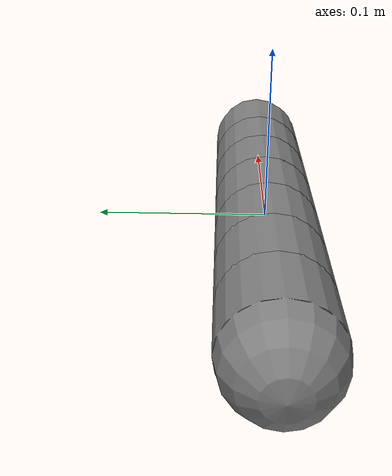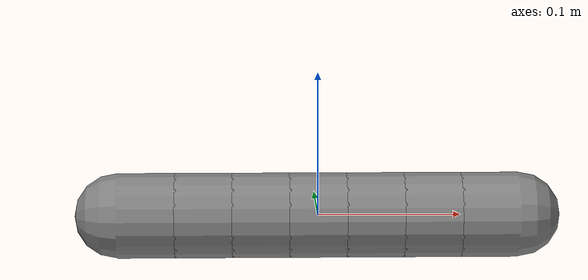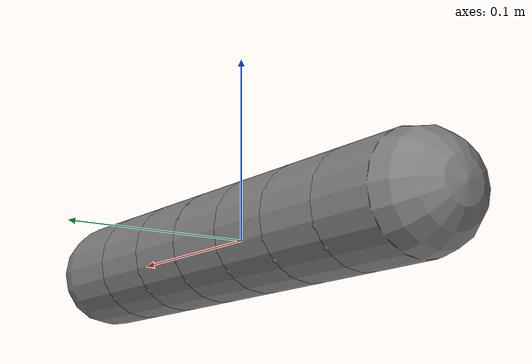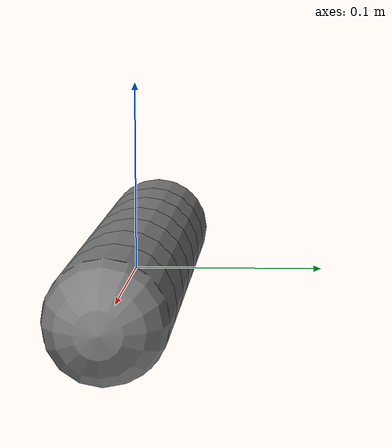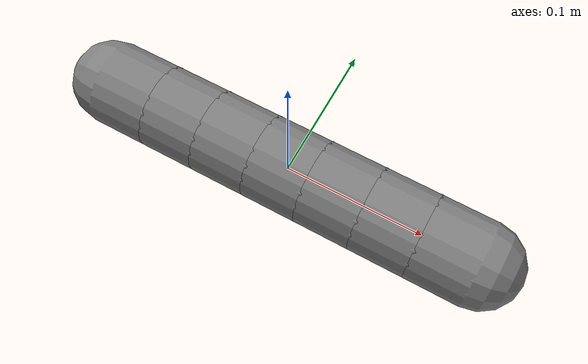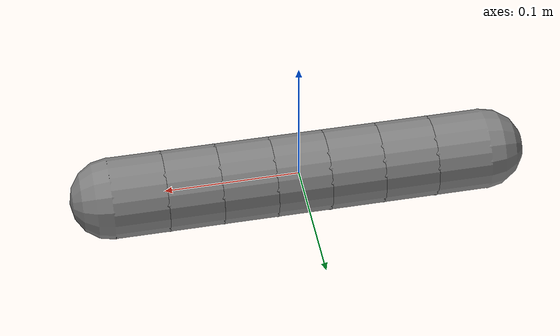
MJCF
<mujoco model="sausage">

    <option timestep="0.002" />

    <default>
        <default class="seg">
            <!-- 3-DOF Gelenk für Wabbeln -->
            <joint type="ball" stiffness="1" damping="0.1" armature="0.001"/>

            <!-- Wurstsegment-Kapsel -->
            <geom type="capsule"
                  size="0.03"
                  mass="0.2"
                  solref="0.02 1"
                  solimp="0.95 0.95 0.01"
                  friction="0.7 0.3 0.1"
                  fromto="-0.00 0 0 0.04 0 0"
                  contype="1"
                  conaffinity="0"
            />
        </default>
    </default>

    <worldbody>
        <!-- Die 7 Segmente werden ineinander verschachtelt -->
        <body name="seg0" pos="-0.14 0 0">
            <geom class="seg" name="seg0_geom"/>
            <site name="sausage_site_left" pos="0 0 0"/>

            <body name="seg1" pos="0.04 0 0">
                <joint class="seg" name="ball_1"/>
                <geom class="seg" name="seg1_geom"/>

                <body name="seg2" pos="0.04 0 0">
                    <joint class="seg" name="ball_2"/>
                    <geom class="seg" name="seg2_geom"/>

                    <body name="seg3" pos="0.04 0 0">
                        <joint class="seg" name="ball_3"/>
                        <geom class="seg" name="seg3_geom"/>
                        <site name="sausage_site_middle" pos="0.02 0 0"/>

                        <body name="seg4" pos="0.04 0 0">
                            <joint class="seg" name="ball_4"/>
                            <geom class="seg" name="seg4_geom"/>

                            <body name="seg5" pos="0.04 0 0">
                                <joint class="seg" name="ball_5"/>
                                <geom class="seg" name="seg5_geom"/>

                                <body name="seg6" pos="0.04 0 0">
                                    <joint class="seg" name="ball_6"/>
                                    <geom class="seg" name="seg6_geom"/>
                                    <site name="sausage_site_right" pos="0.04 0 0"/>
                                </body>
                            </body>
                        </body>
                    </body>
                </body>
            </body>
        </body>
    </worldbody>

</mujoco>
